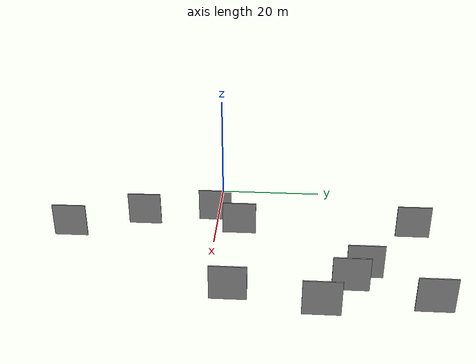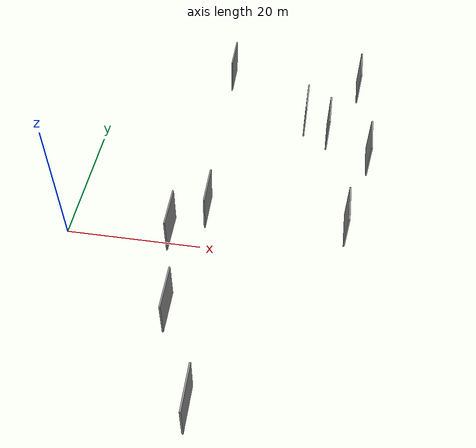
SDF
<sdf version="1.6">
 <world name="default">
  <scene>
   <sky><clouds><speed>12</speed></clouds></sky>
   <ambient>0.4 0.4 0.4 1</ambient>
   <background>0.7 0.7 0.7 1</background>
   <shadows>1</shadows>
  </scene>
  <gravity>0 0 -9.8066</gravity>
  <magnetic_field>6e-06 2.3e-05 -4.2e-05</magnetic_field>
  <physics default="0" name="default_physics" type="ode">
   <ode>
    <solver>
     <type>quick</type>
     <iters>10</iters>
     <sor>1.0</sor>
     <use_dynamic_moi_rescaling>0</use_dynamic_moi_rescaling>
    </solver>
    <constraints>
     <cfm>0</cfm>
     <erp>0.2</erp>
     <contact_max_correcting_vel>100</contact_max_correcting_vel>
     <contact_surface_layer>0.001</contact_surface_layer>
    </constraints>
   </ode>
   <max_step_size>0.004</max_step_size>
   <real_time_factor>1</real_time_factor>
   <real_time_update_rate>250</real_time_update_rate>
  </physics>
  <light name="sun" type="directional">
   <pose>0 0 10 0 0 0</pose>
   <diffuse>0.8 0.8 0.8 1</diffuse>
   <specular>0.2 0.2 0.2 1</specular>
   <attenuation>
    <range>1000</range>
    <constant>0.9</constant>
    <linear>0.01</linear>
    <quadratic>0.001</quadratic>
   </attenuation>
   <direction>-0.5 0.1 -0.9</direction>
  </light>
  <model name="grey_wall_1">
   <static>1</static>
   <pose>40.4517 4.3081 2.5 0.000000 0.000000 1.570796</pose>
   <link name="link">
    <pose>0 0 3.00 0 0 0</pose>
    <collision name="collision"><geometry><box><size>6.00 0.2 6.00</size></box></geometry></collision>
    <visual name="visual">
     <cast_shadows>0</cast_shadows>
     <geometry><box><size>6.00 0.2 6.00</size></box></geometry>
     <material>
      <script>
       <uri>model://grey_wall/materials/scripts</uri>
       <uri>model://grey_wall/materials/textures</uri>
       <name>vrc/grey_wall</name>
      </script>
     </material>
    </visual>
   </link>
  </model>
  <model name="grey_wall_2">
   <static>1</static>
   <pose>41.6044 35.8665 2.5 0.000000 0.000000 1.570796</pose>
   <link name="link">
    <pose>0 0 3.00 0 0 0</pose>
    <collision name="collision"><geometry><box><size>6.00 0.2 6.00</size></box></geometry></collision>
    <visual name="visual">
     <cast_shadows>0</cast_shadows>
     <geometry><box><size>6.00 0.2 6.00</size></box></geometry>
     <material>
      <script>
       <uri>model://grey_wall/materials/scripts</uri>
       <uri>model://grey_wall/materials/textures</uri>
       <name>vrc/grey_wall</name>
      </script>
     </material>
    </visual>
   </link>
  </model>
  <model name="grey_wall_3">
   <static>1</static>
   <pose>15.8699 -0.0404 2.5 0.000000 0.000000 1.570796</pose>
   <link name="link">
    <pose>0 0 3.00 0 0 0</pose>
    <collision name="collision"><geometry><box><size>6.00 0.2 6.00</size></box></geometry></collision>
    <visual name="visual">
     <cast_shadows>0</cast_shadows>
     <geometry><box><size>6.00 0.2 6.00</size></box></geometry>
     <material>
      <script>
       <uri>model://grey_wall/materials/scripts</uri>
       <uri>model://grey_wall/materials/textures</uri>
       <name>vrc/grey_wall</name>
      </script>
     </material>
    </visual>
   </link>
  </model>
  <model name="grey_wall_4">
   <static>1</static>
   <pose>19.9277 35.9241 2.5 0.000000 0.000000 1.570796</pose>
   <link name="link">
    <pose>0 0 3.00 0 0 0</pose>
    <collision name="collision"><geometry><box><size>6.00 0.2 6.00</size></box></geometry></collision>
    <visual name="visual">
     <cast_shadows>0</cast_shadows>
     <geometry><box><size>6.00 0.2 6.00</size></box></geometry>
     <material>
      <script>
       <uri>model://grey_wall/materials/scripts</uri>
       <uri>model://grey_wall/materials/textures</uri>
       <name>vrc/grey_wall</name>
      </script>
     </material>
    </visual>
   </link>
  </model>
  <model name="grey_wall_5">
   <static>1</static>
   <pose>43.4032 18.6833 2.5 0.000000 0.000000 1.570796</pose>
   <link name="link">
    <pose>0 0 3.00 0 0 0</pose>
    <collision name="collision"><geometry><box><size>6.00 0.2 6.00</size></box></geometry></collision>
    <visual name="visual">
     <cast_shadows>0</cast_shadows>
     <geometry><box><size>6.00 0.2 6.00</size></box></geometry>
     <material>
      <script>
       <uri>model://grey_wall/materials/scripts</uri>
       <uri>model://grey_wall/materials/textures</uri>
       <name>vrc/grey_wall</name>
      </script>
     </material>
    </visual>
   </link>
  </model>
  <model name="grey_wall_6">
   <static>1</static>
   <pose>18.0618 -12.9120 2.5 0.000000 0.000000 1.570796</pose>
   <link name="link">
    <pose>0 0 3.00 0 0 0</pose>
    <collision name="collision"><geometry><box><size>6.00 0.2 6.00</size></box></geometry></collision>
    <visual name="visual">
     <cast_shadows>0</cast_shadows>
     <geometry><box><size>6.00 0.2 6.00</size></box></geometry>
     <material>
      <script>
       <uri>model://grey_wall/materials/scripts</uri>
       <uri>model://grey_wall/materials/textures</uri>
       <name>vrc/grey_wall</name>
      </script>
     </material>
    </visual>
   </link>
  </model>
  <model name="grey_wall_7">
   <static>1</static>
   <pose>36.9250 23.5503 2.5 0.000000 0.000000 1.570796</pose>
   <link name="link">
    <pose>0 0 3.00 0 0 0</pose>
    <collision name="collision"><geometry><box><size>6.00 0.2 6.00</size></box></geometry></collision>
    <visual name="visual">
     <cast_shadows>0</cast_shadows>
     <geometry><box><size>6.00 0.2 6.00</size></box></geometry>
     <material>
      <script>
       <uri>model://grey_wall/materials/scripts</uri>
       <uri>model://grey_wall/materials/textures</uri>
       <name>vrc/grey_wall</name>
      </script>
     </material>
    </visual>
   </link>
  </model>
  <model name="grey_wall_8">
   <static>1</static>
   <pose>20.4347 4.7630 2.5 0.000000 0.000000 1.570796</pose>
   <link name="link">
    <pose>0 0 3.00 0 0 0</pose>
    <collision name="collision"><geometry><box><size>6.00 0.2 6.00</size></box></geometry></collision>
    <visual name="visual">
     <cast_shadows>0</cast_shadows>
     <geometry><box><size>6.00 0.2 6.00</size></box></geometry>
     <material>
      <script>
       <uri>model://grey_wall/materials/scripts</uri>
       <uri>model://grey_wall/materials/textures</uri>
       <name>vrc/grey_wall</name>
      </script>
     </material>
    </visual>
   </link>
  </model>
  <model name="grey_wall_9">
   <static>1</static>
   <pose>33.1621 26.1500 2.5 0.000000 0.000000 1.570796</pose>
   <link name="link">
    <pose>0 0 3.00 0 0 0</pose>
    <collision name="collision"><geometry><box><size>6.00 0.2 6.00</size></box></geometry></collision>
    <visual name="visual">
     <cast_shadows>0</cast_shadows>
     <geometry><box><size>6.00 0.2 6.00</size></box></geometry>
     <material>
      <script>
       <uri>model://grey_wall/materials/scripts</uri>
       <uri>model://grey_wall/materials/textures</uri>
       <name>vrc/grey_wall</name>
      </script>
     </material>
    </visual>
   </link>
  </model>
  <model name="grey_wall_10">
   <static>1</static>
   <pose>23.0884 -25.5197 2.5 0.000000 0.000000 1.570796</pose>
   <link name="link">
    <pose>0 0 3.00 0 0 0</pose>
    <collision name="collision"><geometry><box><size>6.00 0.2 6.00</size></box></geometry></collision>
    <visual name="visual">
     <cast_shadows>0</cast_shadows>
     <geometry><box><size>6.00 0.2 6.00</size></box></geometry>
     <material>
      <script>
       <uri>model://grey_wall/materials/scripts</uri>
       <uri>model://grey_wall/materials/textures</uri>
       <name>vrc/grey_wall</name>
      </script>
     </material>
    </visual>
   </link>
  </model>
 </world>
</sdf>
